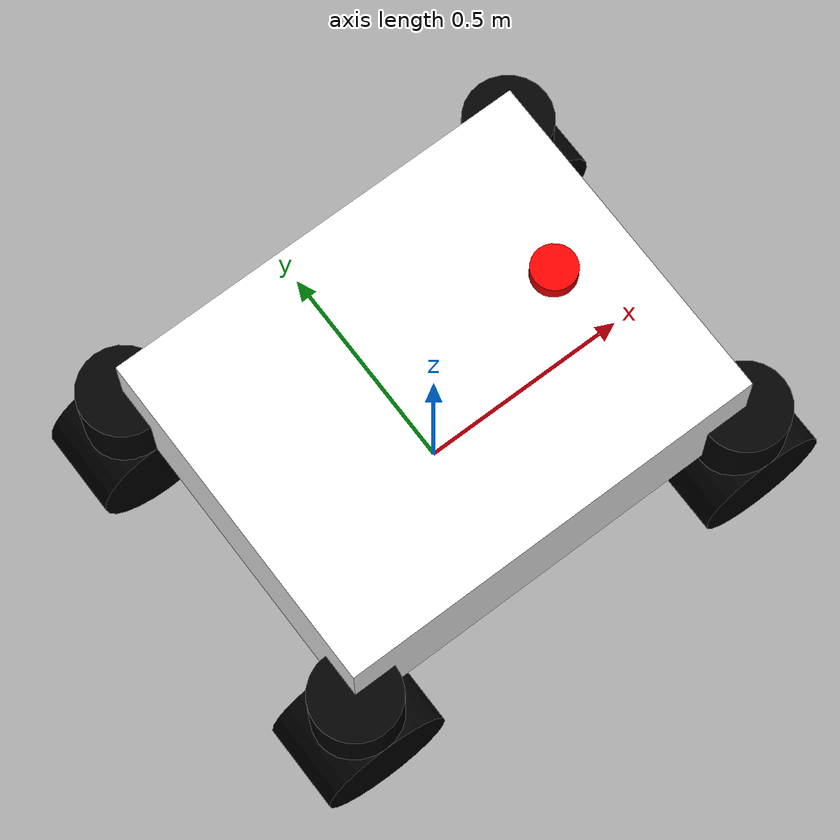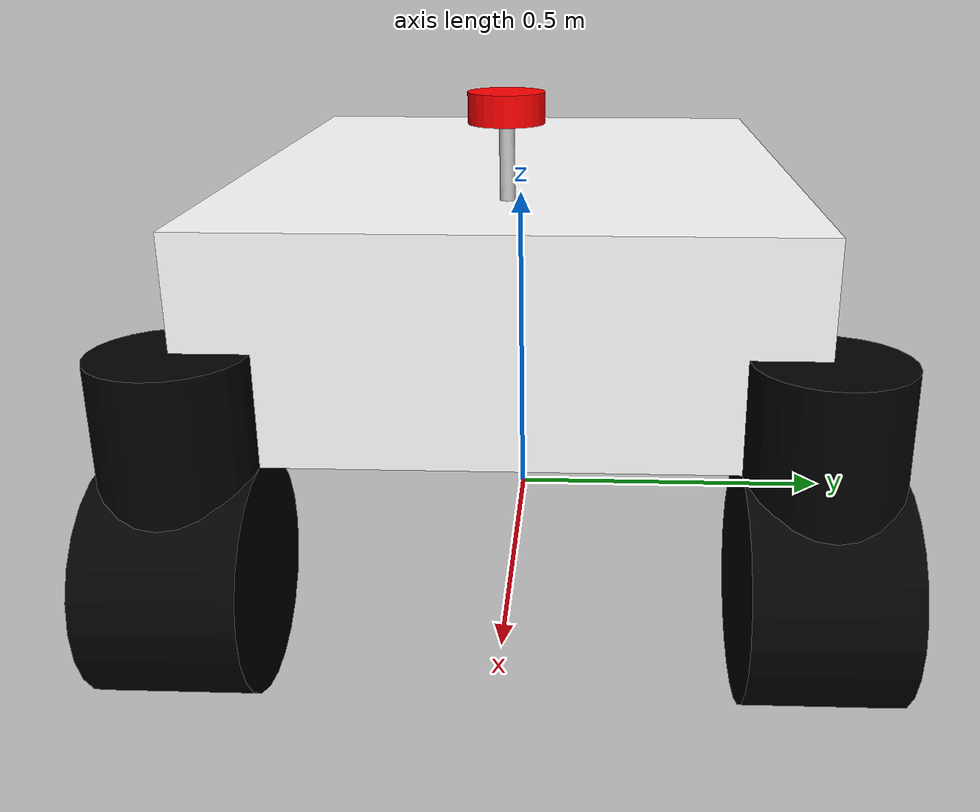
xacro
<?xml version="1.0"?>
<robot xmlns:xacro="http://www.ros.org/wiki/xacro"  name="robot">

    <xacro:include filename="robot_core_4wd_v2.xacro"/>
    <xacro:include filename="lidar.xacro"/>

    <xacro:include filename="ros2_control_4wd_v2.xacro"/>

</robot>

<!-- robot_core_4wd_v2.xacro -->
<robot xmlns:xacro="http://ros.org/wiki/xacro">

  <xacro:include filename="inertial_macros.xacro"/>

  <material name="white">
    <color rgba="1 1 1 1"/>
  </material>

  <material name="black">
    <color rgba="0 0 0 1"/>
  </material>

  <material name="red">
    <color rgba="1 0 0 1"/>
  </material>

  <!-- base link -->
  <link name="base_link">
  </link>

  <!-- base_foot_link-->
  <joint name="base_foot_joint" type="fixed">
    <parent link="base_link"/>
    <child link="base_foot_link"/>
    <origin xyz="0 0 0" rpy="0 0 0"/>
  </joint>

  <link name="base_foot_link">
  </link>

  <!--chassis link-->

  <joint name= "chassis_joint" type="fixed">
    <parent link="base_link"/>
    <child link="chassis_link"/>
    <origin xyz="0 0 0.4" rpy="0 0 0"/>
  </joint>

  <link name="chassis_link">
    <visual>
      <origin xyz ="0 0 0"/>
      <geometry>
        <box size="1.0 0.8 0.3"/>
      </geometry>
      <material name="white"/>
    </visual>
    <collision>
      <origin xyz ="0 0 0"/>
      <geometry>
        <box size="1.0 0.8 0.3"/>
      </geometry>
    </collision>
    <xacro:inertial_box mass="3.0" x="1.0" y="0.8" z="0.3">
      <origin xyz="0 0 0" rpy="0 0 0"/>
    </xacro:inertial_box>
  </link>

  <gazebo reference="chassis_link">
    <material>Gazebo/White</material>
  </gazebo>

  <!-- left_front_steering-->

  <joint name="left_front_steering_joint" type="continuous">
    <parent link="chassis_link"/>
    <child link="left_front_steering_link"/>
    <origin xyz="0.5 0.4 -0.15" rpy="0 0 0"/>
    <axis xyz="0 0 1"/>
  </joint>

  <link name="left_front_steering_link">
    <visual>
      <geometry>
        <cylinder radius="0.1" length="0.3"/>
      </geometry>
      <material name="black"/>
    </visual>
    <collision>
      <geometry>
        <cylinder radius="0.1" length="0.3"/>
      </geometry>
    </collision>
    <xacro:inertial_cylinder mass="0.25" length="0.3" radius="0.1">
      <origin xyz="0 0 0" rpy="0 0 0"/>
    </xacro:inertial_cylinder>
  </link>

  <gazebo reference="left_front_steering_link">
    <material>Gazebo/Red</material>
  </gazebo>

<!-- left_front_wheel-->
  <joint name="left_front_wheel_joint" type="continuous">
    <parent link="left_front_steering_link"/>
    <child link="left_front_wheel_link"/>
    <origin xyz="0 0 -0.15" rpy="${-pi/2} 0 0"/>
    <axis xyz="0 0 1"/>
  </joint>

  <link name="left_front_wheel_link">
    <visual>
      <geometry>
        <cylinder radius ="0.15" length="0.2"/>
      </geometry>
      <material name="black"/>
    </visual>
    <collision>
      <geometry>
        <cylinder radius ="0.15" length="0.2"/>
      </geometry>
    </collision>
    <xacro:inertial_cylinder mass="0.5" length="0.2" radius="0.15">
      <origin xyz="0 0 0" rpy="0 0 0"/>
    </xacro:inertial_cylinder>
  </link>
  <gazebo reference="left_front_wheel_link">
    <material>Gazebo/Black</material>
  </gazebo>

  <!-- right_front_steering-->

  <joint name="right_front_steering_joint" type="continuous">
    <parent link="chassis_link"/>
    <child link="right_front_steering_link"/>
    <origin xyz="0.5 -0.4 -0.15" rpy="0 0 0"/>
    <axis xyz="0 0 1"/>
  </joint>

  <link name="right_front_steering_link">
    <visual>
      <geometry>
        <cylinder radius="0.1" length="0.3"/>
      </geometry>
      <material name="black"/>
    </visual>
    <collision>
      <geometry>
        <cylinder radius="0.1" length="0.3"/>
      </geometry>
    </collision>
    <xacro:inertial_cylinder mass="0.25" length="0.3" radius="0.1">
      <origin xyz="0 0 0" rpy="0 0 0"/>
    </xacro:inertial_cylinder>
  </link>
  <gazebo reference="right_front_steering_link">
    <material>Gazebo/Red</material>
  </gazebo>

<!-- right_front_wheel-->
  <joint name="right_front_wheel_joint" type="continuous">
    <parent link="right_front_steering_link"/>
    <child link="right_front_wheel_link"/>
    <origin xyz="0 0 -0.15" rpy="${-pi/2} 0 0"/>
    <axis xyz="0 0 1"/>
  </joint>

  <link name="right_front_wheel_link">
    <visual>
      <geometry>
        <cylinder radius ="0.15" length="0.2"/>
      </geometry>
      <material name="black"/>
    </visual>
    <collision>
      <geometry>
        <cylinder radius ="0.15" length="0.2"/>
      </geometry>
    </collision>
    <xacro:inertial_cylinder mass="0.5" length="0.2" radius="0.15">
      <origin xyz="0 0 0" rpy="0 0 0"/>
    </xacro:inertial_cylinder>

  </link>
  <gazebo reference="right_front_wheel_link">
    <material>Gazebo/Black</material>
  </gazebo>

  <!-- left_back_steering-->
  <joint name="left_back_steering_joint" type="continuous">
    <parent link="chassis_link"/>
    <child link="left_back_steering_link"/>
    <origin xyz="-0.5 0.4 -0.15" rpy="0 0 0"/>
    <axis xyz="0 0 1"/>
  </joint>

  <link name="left_back_steering_link">
    <visual>
      <geometry>
        <cylinder radius="0.1" length="0.3"/>
      </geometry>
      <material name="black"/>
    </visual>
    <collision>
      <geometry>
        <cylinder radius="0.1" length="0.3"/>
      </geometry>
    </collision>
    <xacro:inertial_cylinder mass="0.25" length="0.3" radius="0.1">
      <origin xyz="0 0 0" rpy="0 0 0"/>
    </xacro:inertial_cylinder>
  </link>
  <gazebo reference="left_back_steering_link">
    <material>Gazebo/Red</material>
  </gazebo>

<!-- left_back_wheel-->
  <joint name="left_back_wheel_joint" type="continuous">
    <parent link="left_back_steering_link"/>
    <child link="left_back_wheel_link"/>
    <origin xyz="0 0 -0.15" rpy="${-pi/2} 0 0"/>
    <axis xyz="0 0 1"/>
  </joint>

  <link name="left_back_wheel_link">
    <visual>
      <geometry>
        <cylinder radius ="0.15" length="0.2"/>
      </geometry>
      <material name="black"/>
    </visual>
    <collision>
      <geometry>
        <cylinder radius ="0.15" length="0.2"/>
      </geometry>
    </collision>
    <xacro:inertial_cylinder mass="0.5" length="0.2" radius="0.15">
      <origin xyz="0 0 0" rpy="0 0 0"/>
    </xacro:inertial_cylinder>

  </link>
  <gazebo reference="left_back_wheel_link">
    <material>Gazebo/Black</material>
  </gazebo>

  <!-- right_back_steering-->
  <joint name="right_back_steering_joint" type="continuous">
    <parent link="chassis_link"/>
    <child link="right_back_steering_link"/>
    <origin xyz="-0.5 -0.4 -0.15" rpy="0 0 0"/>
    <axis xyz="0 0 1"/>
  </joint>
  <link name="right_back_steering_link">
    <visual>
      <geometry>
        <cylinder radius="0.1" length="0.3"/>
      </geometry>
      <material name="black"/>
    </visual>
    <collision>
      <geometry>
        <cylinder radius="0.1" length="0.3"/>
      </geometry>
    </collision>
    <xacro:inertial_cylinder mass="0.25" length="0.3" radius="0.1">
      <origin xyz="0 0 0" rpy="0 0 0"/>
    </xacro:inertial_cylinder>
  </link>

  <gazebo reference="right_back_steering_link">
    <material>Gazebo/Red</material>
  </gazebo>

<!-- right_back_wheel-->
  <joint name="right_back_wheel_joint" type="continuous">
    <parent link="right_back_steering_link"/>
    <child link="right_back_wheel_link"/>
    <origin xyz="0 0 -0.15" rpy="${-pi/2} 0 0"/>
    <axis xyz="0 0 1"/>
  </joint>

  <link name="right_back_wheel_link">
    <visual>
      <geometry>
        <cylinder radius ="0.15" length="0.2"/>
      </geometry>
      <material name="black"/>
    </visual>
    <collision>
      <geometry>
        <cylinder radius ="0.15" length="0.2"/>
      </geometry>
    </collision>
    <xacro:inertial_cylinder mass="0.5" length="0.2" radius="0.15">
      <origin xyz="0 0 0" rpy="0 0 0"/>
    </xacro:inertial_cylinder>
  </link>

  <gazebo reference="right_back_wheel_link">
    <material>Gazebo/Black</material>
  </gazebo>
  <gazebo reference="right_back_wheel_link">
    <material>Gazebo/Black</material>
  </gazebo>

  <!-- ↓↓↓ ここから追加 ↓↓↓ -->

  <!-- Ground Truth Odometry Plugin -->
  <gazebo>
    <plugin name="ground_truth_odometry" filename="libgazebo_ros_p3d.so">
      <ros>
        <namespace>/</namespace>
        <remapping>odom:=ground_truth/odom</remapping>
      </ros>
      <update_rate>50.0</update_rate>
      <body_name>base_link</body_name>
      <frame_name>world</frame_name>
      <gaussian_noise>0.0</gaussian_noise>
    </plugin>
  </gazebo>

  <!-- ↑↑↑ ここまで追加 ↑↑↑ -->

</robot>

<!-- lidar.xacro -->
<robot xmlns:xacro="http://ros.org/wiki/xacro" >

    <!-- LiDAR Support Post -->
    <joint name="lidar_post_joint" type="fixed">
        <parent link="chassis_link"/>
        <child link="lidar_post"/>
        <origin xyz="0.3 0 0.1" rpy="0 0 0"/>
    </joint>

    <link name="lidar_post">
        <visual>
            <origin xyz="0 0 0.075"/>
            <geometry>
                <cylinder radius="0.01" length="0.15"/>
            </geometry>
            <material name="silver">
                <color rgba="0.8 0.8 0.8 1"/>
            </material>
        </visual>
        <collision>
            <origin xyz="0 0 0.075"/>
            <geometry>
                <cylinder radius="0.01" length="0.15"/>
            </geometry>
        </collision>
        <xacro:inertial_cylinder mass="0.05" length="0.15" radius="0.01">
            <origin xyz="0 0 0.075" rpy="0 0 0"/>
        </xacro:inertial_cylinder>
    </link>

    <!-- LiDAR Sensor -->
    <joint name="laser_joint" type="fixed">
        <parent link="lidar_post"/>
        <child link="laser_frame"/>
        <origin xyz="0 0 0.15" rpy="0 0 0"/>
    </joint>

    <link name="laser_frame">
        <visual>
            <origin xyz="0 0 0.02"/>
            <geometry>
                <cylinder radius="0.05" length="0.04"/>
            </geometry>
            <material name="red"/>
        </visual>
        <collision>
            <geometry>
                <cylinder radius="0.05" length="0.04"/>
            </geometry>
            <material name="black"/>
        </collision>
        <xacro:inertial_cylinder mass="0.01" length="0.04" radius="0.05">
            <origin xyz="0 0 0" rpy="0 0 0"/>
        </xacro:inertial_cylinder>

    </link>

    <!-- Gazebo properties for LiDAR post -->
    <gazebo reference="lidar_post">
        <material>Gazebo/Grey</material>
    </gazebo>

    <!-- Gazebo properties for LiDAR sensor -->
    <gazebo reference="laser_frame">
        <material>Gazebo/Black</material>

        <sensor name="laser" type="ray">
            <pose> 0 0 0.02 0 0 0 </pose>
            <visualize>true</visualize>
            <update_rate>20</update_rate>
            <ray>
                <scan>
                    <horizontal>
                        <samples>360</samples>
                        <min_angle>-3.14</min_angle>
                        <max_angle>3.14</max_angle>
                    </horizontal>
                </scan>
                <range>
                    <min>0.3</min>
                    <max>12</max>
                </range>
            </ray>
            <plugin name="laser_controller" filename="libgazebo_ros_ray_sensor.so">
                <ros>
                    <argument>~/out:=scan</argument>
                </ros>
                <output_type>sensor_msgs/LaserScan</output_type>
                <frame_name>laser_frame</frame_name>
            </plugin>
        </sensor>
    </gazebo>

</robot>
